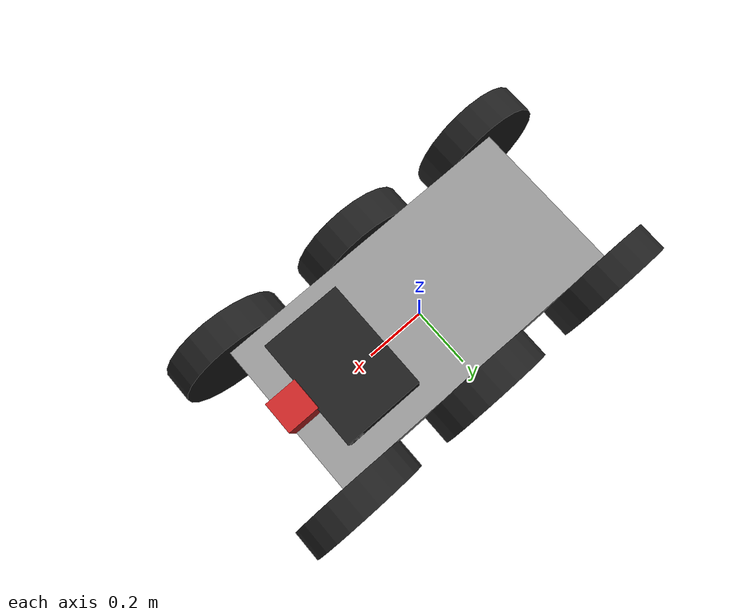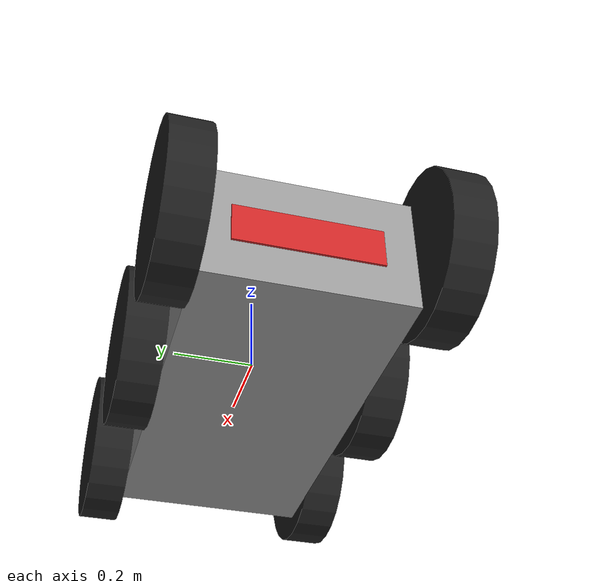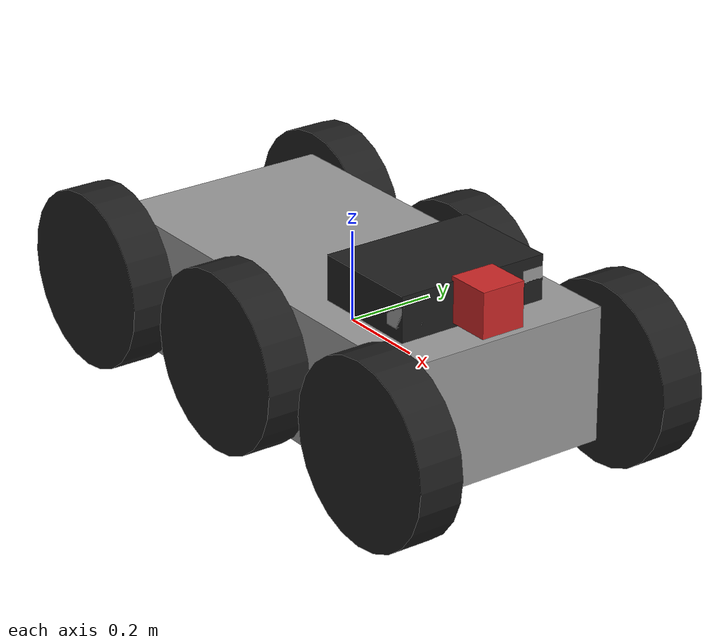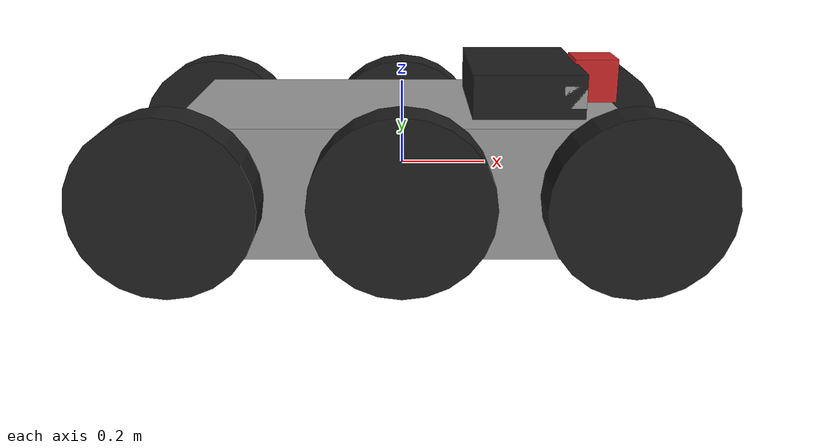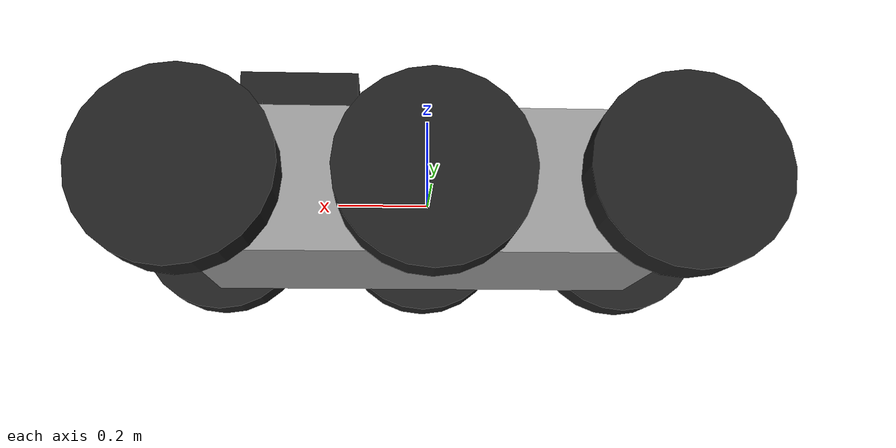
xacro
<?xml version='1.0'?>

<robot name="myrobot" xmlns:xacro="http://www.ros.org/wiki/xacro">
<xacro:property name="cameraSize" value="0.05"/>
<xacro:property name="cameraMass" value="0.05"/>

  <xacro:include filename="$(find mybot_description)/urdf/mybot.gazebo" />
  <xacro:include filename="$(find mybot_description)/urdf/materials.xacro" />
  <xacro:include filename="$(find mybot_description)/urdf/macros.xacro" />

 <!-- Base Size -->
  <property name="base_x_size" value="1" />
  <property name="base_y_size" value="0.5" />
  <property name="base_z_size" value="0.3" />

  <!-- Wheel Mounting Positions -->
  <xacro:property name="wheelbase" value="0.5120" />
  <xacro:property name="track" value="0.5708" />
  <xacro:property name="wheel_vertical_offset" value="0.03282" />

  <!-- Wheel Properties -->
  <xacro:property name="wheel_length" value="0.1" />
  <xacro:property name="wheel_radius" value="0.2" />
  <link name='base_link'>
    <pose>0 0 0.1 0 0 0</pose>

    <inertial>
      <mass value="15.0"/>
      <origin xyz="0.0 0 0.1" rpy=" 0 0 0"/>
      <inertia
         ixx="0.6022" ixy="-0.02364" ixz="-0.1197" iyy="1.7386" iyz="-0.001544" izz="2.0296"
      />
    </inertial>

    <collision name='collision'>
      <geometry>
        <box size="1 .5 .3"/>
      </geometry>
    </collision>

    <visual name='base_link_visual'>
      <origin xyz="0 0 0" rpy=" 0 0 0"/>
      <geometry>
        <box size="1 .5 .3"/>
      </geometry>
        <material name="grey"/>
    </visual>
  </link>

    <!-- Base footprint is on the ground under the robot -->
    <link name="base_footprint"/>

    <joint name="base_footprint_joint" type="fixed">
      <origin xyz="0 0 ${wheel_vertical_offset - wheel_radius}" rpy="0 0 0" />
      <parent link="base_link" />
      <child link="base_footprint" />
    </joint>

    <!-- Interial link stores the robot's inertial information -->
    <link name="inertial_link">
      <inertial>
        <mass value="46.034"/>
        <origin xyz="-0.00065 -0.085 0.062" />
        <inertia ixx="0.6022" ixy="-0.02364" ixz="-0.1197" iyy="1.7386" iyz="-0.001544" izz="2.0296" />
      </inertial>
    </link>

    <joint name="inertial_joint" type="fixed">
      <origin xyz="0 0 0" rpy="0 0 0" />
      <parent link="base_link" />
      <child link="inertial_link" />
    </joint>

  <link name="medium_left_wheel">
    <origin xyz="0 0.3 0.1" rpy="0 1.5707 1.5707"/>
    <collision name="collision">
      <origin xyz="0 0 0" rpy="0 1.5707 1.5707"/>
      <geometry>
        <cylinder radius="0.2" length="0.1"/>
      </geometry>
    </collision>
    <visual name="medium_left_wheel_visual">
      <origin xyz="0 0 0" rpy="0 1.5707 1.5707"/>
      <geometry>
        <cylinder radius="0.2" length="0.1"/>
      </geometry>
        <material name="black"/>
    </visual>
    <inertial>
      <origin xyz="0 0 0" rpy="0 1.5707 1.5707"/>
      <mass value="1"/>
      <cylinder_inertia m="5" r="0.2" h="0.1"/>
      <inertia
        ixx="1.0" ixy="0.0" ixz="0.0"
        iyy="1.0" iyz="0.0"
        izz="1.0"/>
    </inertial>
  </link>

  <link name="medium_right_wheel">
    <origin xyz="0 -0.3 0.1" rpy="0 1.5707 1.5707"/>
    <collision name="collision">
      <origin xyz="0 0 0" rpy="0 1.5707 1.5707"/>
      <geometry>
        <cylinder radius="0.2" length="0.1"/>
      </geometry>
    </collision>
    <visual name="medium_right_wheel_visual">
      <origin xyz="0 0 0" rpy="0 1.5707 1.5707"/>
      <geometry>
        <cylinder radius="0.2" length="0.1"/>
      </geometry>
        <material name="black"/>
    </visual>
    <inertial>
      <origin xyz="0 0 0" rpy="0 1.5707 1.5707"/>
      <mass value="1"/>
      <cylinder_inertia m="5" r="0.2" h="0.1"/>
      <inertia
        ixx="1.0" ixy="0.0" ixz="0.0"
        iyy="1.0" iyz="0.0"
        izz="1.0"/>
    </inertial>
  </link>

  <link name="front_left_wheel">
    <collision name="collision">
      <!--origin xyz="0 0 0" rpy="0 1.5707 1.5707"/-->
      <geometry>
        <cylinder radius="0.2" length="0.1"/>
      </geometry>
    </collision>
    <visual name="front_left_wheel_visual">
      <origin xyz="0 0 0" rpy="0 1.5707 1.5707"/>
      <geometry>
        <cylinder radius="0.2" length="0.1"/>
      </geometry>
        <material name="black"/>
    </visual>
    <inertial>
      <origin xyz="0 0 0" rpy="0 1.5707 1.5707"/>
      <mass value="1"/>
      <cylinder_inertia m="5" r="0.2" h="0.1"/>
      <inertia
        ixx="1.0" ixy="0.0" ixz="0.0"
        iyy="1.0" iyz="0.0"
        izz="1.0"/>
    </inertial>
  </link>

  <link name="front_right_wheel">
    <collision name="collision">
      <!--origin xyz="0 0 0" rpy="0 1.5707 1.5707"/-->
      <geometry>
        <cylinder radius="0.2" length="0.1"/>
      </geometry>
    </collision>
    <visual name="front_right_wheel_visual">
      <origin xyz="0 0 0" rpy="0 1.5707 1.5707"/>
      <geometry>
        <cylinder radius="0.2" length="0.1"/>
      </geometry>
        <material name="black"/>
    </visual>
    <inertial>
      <origin xyz="0 0 0" rpy="0 1.5707 1.5707"/>
      <mass value="1"/>
      <cylinder_inertia m="5" r="0.2" h="0.1"/>
      <inertia
        ixx="1.0" ixy="0.0" ixz="0.0"
        iyy="1.0" iyz="0.0"
        izz="1.0"/>
    </inertial>
  </link>

<link name="back_left_wheel">
    <!--origin xyz="0.1 0.13 0.1" rpy="0 1.5707 1.5707"/-->
    <collision name="collision">
      <origin xyz="0 0 0" rpy="0 1.5707 1.5707"/>
      <geometry>
        <cylinder radius="0.2" length="0.1"/>
      </geometry>
    </collision>
    <visual name="back_left_wheel_visual">
      <origin xyz="0 0 0" rpy="0 1.5707 1.5707"/>
      <geometry>
        <cylinder radius="0.2" length="0.1"/>
      </geometry>
        <material name="black"/>
    </visual>
    <inertial>
      <origin xyz="0 0 0" rpy="0 1.5707 1.5707"/>
      <mass value="1"/>
      <cylinder_inertia m="5" r="0.2" h="0.1"/>
      <inertia
        ixx="1.0" ixy="0.0" ixz="0.0"
        iyy="1.0" iyz="0.0"
        izz="1.0"/>
    </inertial>
  </link>

  <link name="back_right_wheel">
    <!--origin xyz="0.1 -0.13 0.1" rpy="0 1.5707 1.5707"/-->
    <collision name="collision">
      <origin xyz="0 0 0" rpy="0 1.5707 1.5707"/>
      <geometry>
        <cylinder radius="0.2" length="0.1"/>
      </geometry>
    </collision>
    <visual name="back_right_wheel_visual">
      <origin xyz="0 0 0" rpy="0 1.5707 1.5707"/>
      <geometry>
        <cylinder radius="0.2" length="0.1"/>
      </geometry>
      <material name="black"/>
    </visual>
    <inertial>
      <origin xyz="0 0 0" rpy="0 1.5707 1.5707"/>
      <mass value="1"/>
      <cylinder_inertia m="5" r="0.2" h="0.1"/>
      <inertia
        ixx="1.0" ixy="0.0" ixz="0.0"
        iyy="1.0" iyz="0.0"
        izz="1.0"/>
    </inertial>
</link>

 <joint type="continuous" name="medium_left_wheel_hinge">
    <origin xyz="0 0.3 0" rpy="0 0 0"/>
    <child link="medium_left_wheel"/>
    <parent link="base_link"/>
    <axis xyz="0 1 0" rpy="0 0 0"/>
    <limit effort="100" velocity="100"/>
    <joint_properties damping="0.0" friction="0.0"/>
  </joint>

 <joint type="continuous" name="medium_right_wheel_hinge">
    <origin xyz="0 -0.3 0" rpy="0 0 0"/>
    <child link="medium_right_wheel"/>
    <parent link="base_link"/>
    <axis xyz="0 1 0" rpy="0 0 0"/>
    <limit effort="100" velocity="100"/>
    <joint_properties damping="0.0" friction="0.0"/>
  </joint>

  <joint type="continuous" name="front_left_wheel_hinge">
    <origin xyz="0.5 0.3 0" rpy="0 0 0"/>
    <child link="front_left_wheel"/>
    <parent link="base_link"/>
    <axis xyz="0 1 0" rpy="0 0 0"/>
    <limit effort="100" velocity="100"/>
    <joint_properties damping="0.0" friction="0.0"/>
  </joint>
  <joint type="continuous" name="front_right_wheel_hinge">
    <origin xyz="0.5 -0.3 0" rpy="0 0 0"/>
    <child link="front_right_wheel"/>
    <parent link="base_link"/>
    <axis xyz="0 1 0" rpy="0 0 0"/>
    <limit effort="100" velocity="100"/>
    <joint_properties damping="0.0" friction="0.0"/>
  </joint>

  <joint type="continuous" name="back_left_wheel_hinge">
    <origin xyz="-0.5 0.3 0" rpy="0 0 0"/>
    <child link="back_left_wheel"/>
    <parent link="base_link"/>
    <axis xyz="0 1 0" rpy="0 0 0"/>
    <limit effort="100" velocity="100"/>
    <joint_properties damping="0.0" friction="0.0"/>
  </joint>

 <joint type="continuous" name="back_right_wheel_hinge">
    <origin xyz="-0.5 -0.3 0" rpy="0 0 0"/>
    <child link="back_right_wheel"/>
    <parent link="base_link"/>
    <axis xyz="0 1 0" rpy="0 0 0"/>
    <limit effort="100" velocity="100"/>
    <joint_properties damping="0.0" friction="0.0"/>
  </joint>
<link name="left_camera">
    <collision>
    <origin xyz="0 0 0" rpy="0 0 0"/>
    <geometry>
      <box size="${cameraSize} ${cameraSize} ${cameraSize}"/>
    </geometry>
    </collision>

    <visual>
    <origin xyz="0 0 0" rpy="0 0 0"/>
    <geometry>
      <box size="${cameraSize} ${cameraSize} ${cameraSize}"/>
    </geometry>
    <material name="grey"/>
    </visual>

    <inertial>
       <mass value="${cameraMass}" />
       <origin xyz="0 0 0" rpy="0 0 0" />
       <box_inertia m="${cameraMass}" x= "${cameraSize}" y="${cameraSize}" z="${cameraSize}" />
       <inertia ixx="1e-6" ixy="0" ixz="0" iyy="1e-6" iyz="0" izz="1e-6" />
    </inertial>
</link>
<link name="right_camera">
    <collision>
    <origin xyz="0 0 0" rpy="0 0 0"/>
    <geometry>
      <box size="${cameraSize} ${cameraSize} ${cameraSize}"/>
    </geometry>
    </collision>

    <visual>
    <origin xyz="0 0 0" rpy="0 0 0"/>
    <geometry>
      <box size="${cameraSize} ${cameraSize} ${cameraSize}"/>
    </geometry>
    <material name="grey"/>
    </visual>

    <inertial>
       <mass value="${cameraMass}" />
       <origin xyz="0 0 0" rpy="0 0 0" />
       <box_inertia m="${cameraMass}" x= "${cameraSize}" y="${cameraSize}" z="${cameraSize}" />
       <inertia ixx="1e-6" ixy="0" ixz="0" iyy="1e-6" iyz="0" izz="1e-6" />
    </inertial>
</link>
<link name="stereocamera_baselink">
    <collision>
    <origin xyz="0 0 0" rpy="0 0 0"/>
    <geometry>
      <box size="0.25 .35 0.1"/>
    </geometry>
    </collision>

    <visual>
    <origin xyz="0 0 0" rpy="0 0 0"/>
    <geometry>
      <box size="0.25 0.35 0.1"/>
    </geometry>
    <material name="black"/>
    </visual>

    <inertial>
       <mass value="0.1" />
       <origin xyz="0 0 0" rpy="0 0 0" />
       <box_inertia m="0.1" x= "0.035" y="0.025" z="0.01" />
       <inertia ixx="1e-6" ixy="0" ixz="0" iyy="1e-6" iyz="0" izz="1e-6" />
    </inertial>
</link>

    <link name="imu_link">
        <collision>
            <origin xyz="0 0 0" rpy="0 0 0"/>
            <geometry>
                <box size="0.02 0.02 0.02"/>
            </geometry>
        </collision>
        <visual>
            <origin xyz="0 0 0" rpy="0 0 0"/>
            <geometry>
                <box size="0.02 0.02 0.02"/>
            </geometry>
            <material name="red"/>
        </visual>
        <inertial>
            <mass value="0.001" />
            <origin xyz="0 0 0" rpy="0 0 0"/>
            <inertia ixx="0.00000015" ixy="0" ixz="0" iyy="0.00000015" iyz="0" izz="0.00000015" />
        </inertial>
</link>

<joint name="imu_joint" type="fixed">
  <axis xyz="0 1 0" />
  <origin xyz="0 0 0" rpy="0 0 0"/>
  <parent link="stereocamera_baselink"/>
  <child link="imu_link"/>
</joint>

<joint name="stereocamera_baselink_joint" type="fixed">
  <axis xyz="0 1 0" />
  <origin xyz="0.28 0 0.2" rpy="0 0 0"/>
  <parent link="base_link"/>
  <child link="stereocamera_baselink"/>
</joint>
<joint name="left_camera_joint" type="fixed">
  <axis xyz="0 1 0" />
  <origin xyz="0.1 0.15 0" rpy="0 0 0"/>
  <parent link="stereocamera_baselink"/>
  <child link="left_camera"/>
</joint>

<joint name="right_camera_joint" type="fixed">
  <axis xyz="0 1 0" />
  <origin xyz="0.1 -0.15 0" rpy="0 0 0"/>
  <parent link="stereocamera_baselink"/>
  <child link="right_camera"/>
</joint>

  <joint name="base_laser_joint" type="fixed">
    <axis xyz="0 1 0" />
    <origin xyz=".45 0 0.21" rpy="0 0 0"/>
    <parent link="base_link"/>
    <child link="base_laser"/>
  </joint>

  <!-- Hokuyo Laser -->
  <link name="base_laser">
    <collision>
      <origin xyz="0 0 0" rpy="0 0 0"/>
      <geometry>
    <box size="0.1 0.1 0.1"/>
      </geometry>
    </collision>

    <visual>
    <origin xyz="0 0 0" rpy="0 0 0"/>
    <geometry>
      <box size="0.1 0.1 0.1"/>
    </geometry>
    <material name="red"/>
    </visual>

    <inertial>
      <mass value="1e-5" />
      <origin xyz="0 0 0" rpy="0 0 0"/>
      <inertia ixx="1e-6" ixy="0" ixz="0" iyy="1e-6" iyz="0" izz="1e-6" />
    </inertial>
</link>

<link name="mainboard">
    <collision>
    <origin xyz="0 -0.4 0" rpy="0 0 0"/>
    <geometry>
      <box size="0.25 .35 0.1"/>
    </geometry>
    </collision>

    <visual>
    <origin xyz="0 0 0" rpy="0 0 0"/>
    <geometry>
      <box size="0.25 0.35 0.1"/>
    </geometry>
    <material name="red"/>
    </visual>

    <inertial>
       <mass value="2" />
       <origin xyz="0 0 0" rpy="0 0 0" />
        <box_inertia m="0.3" x= "0.1" y="0.1" z="0.1" />
       <inertia ixx="1e-6" ixy="0" ixz="0" iyy="1e-6" iyz="0" izz="1e-6" />
    </inertial>
</link>

<joint name="mainboard_joint" type="fixed">
  <axis xyz="0 1 0" />
  <origin xyz="-0.38 0 0" rpy="0 0 0"/>
  <parent link="base_link"/>
  <child link="mainboard"/>
</joint>
</robot>
